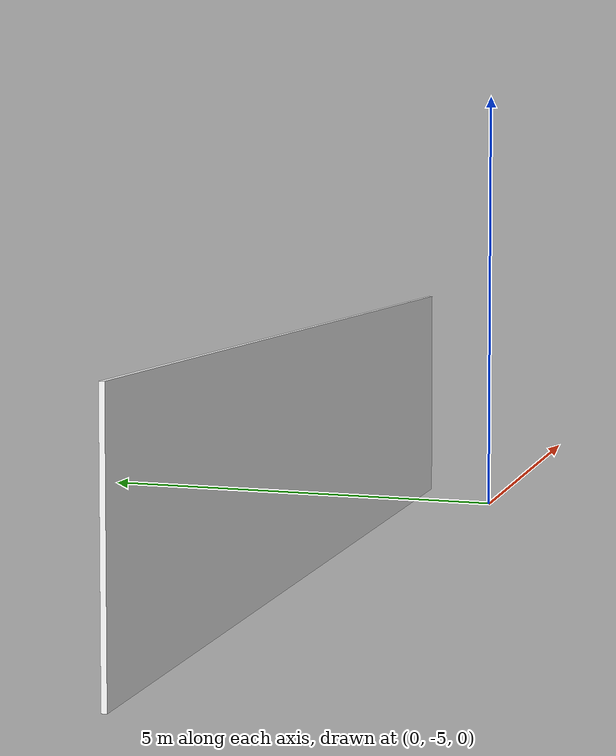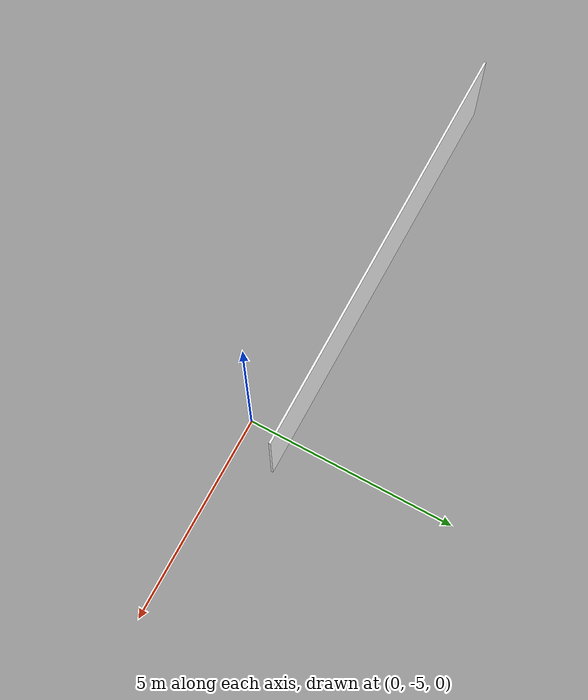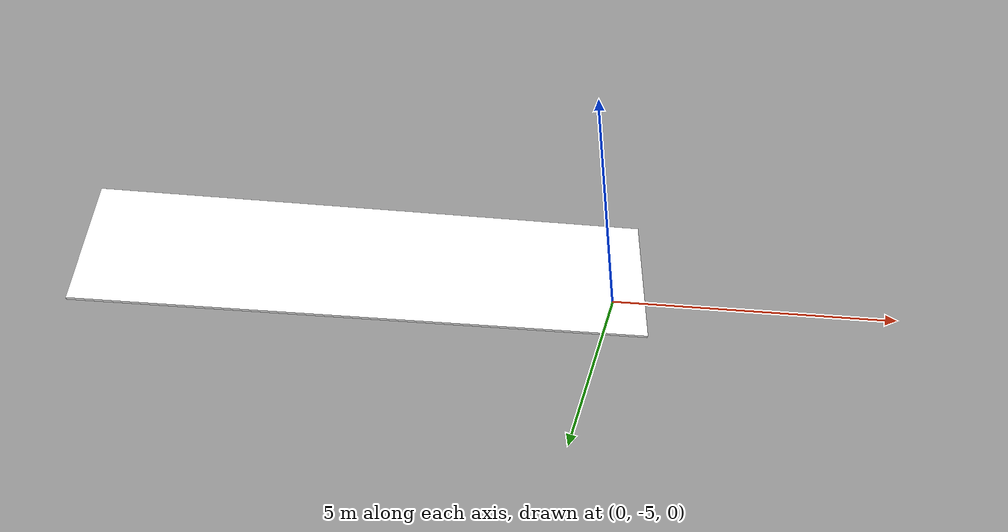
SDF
<?xml version='1.0'?>
<sdf version='1.6'>
  <model name='metall_world'>
    <pose frame=''>-4.195 -4.04 0 0 -0 0</pose>
    <link name='Wall'>
      <collision name='Wall_Collision'>
        <geometry>
          <box>
            <size>10 0.05 2.5</size>
          </box>
        </geometry>
        <pose frame=''>0 0 1.25 0 -0 0</pose>
      </collision>
      <visual name='Wall_Visual'>
        <pose frame=''>0 0 1.25 0 -0 0</pose>
        <geometry>
          <box>
            <size>10 0.05 2.5</size>
          </box>
        </geometry>
        <material>
          <script>
            <uri>model://metal_wall/materials/scripts/</uri>
	    <uri>model://metal_wall/materials/textures/</uri>
            <name>MetalWall/Image</name>
          </script>
          <ambient>1 1 1 1</ambient>
        </material>
        <meta>
          <layer>0</layer>
        </meta>
      </visual>
      <pose frame=''>0 -0 0 0 -0 0</pose>
    </link>
    <static>1</static>
  </model>
</sdf>
